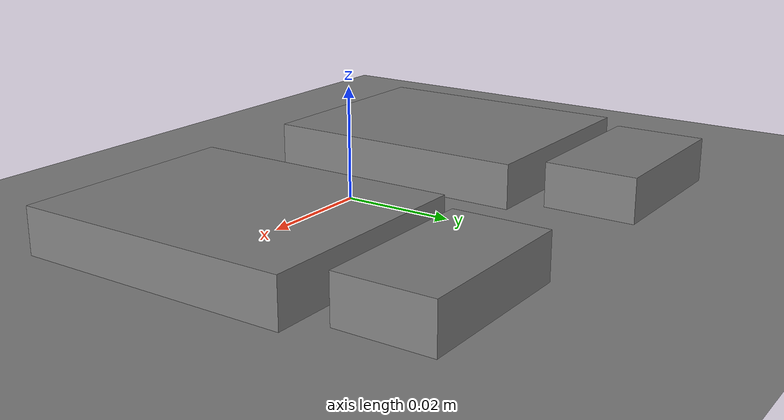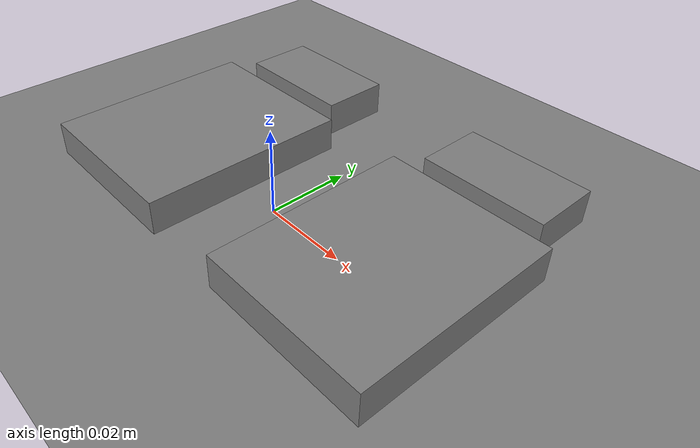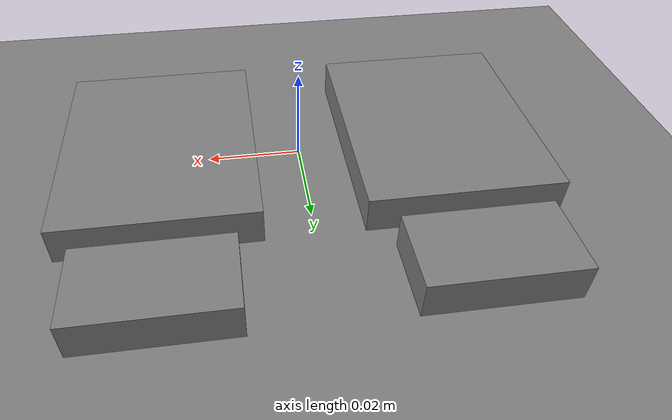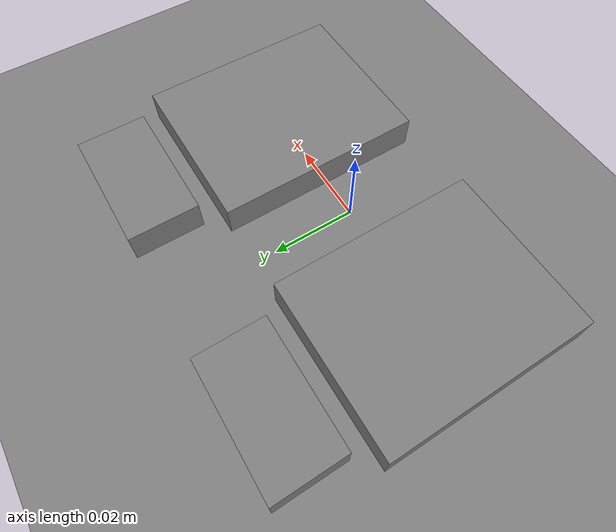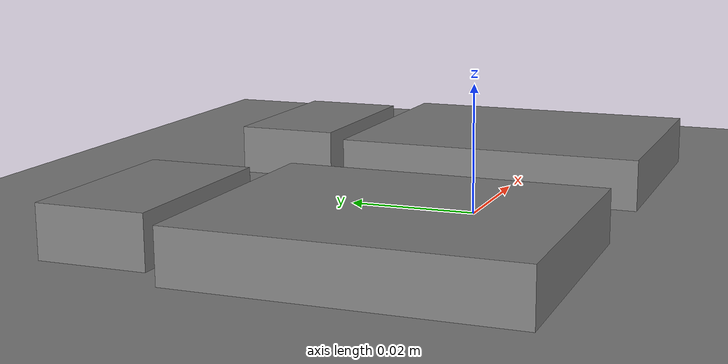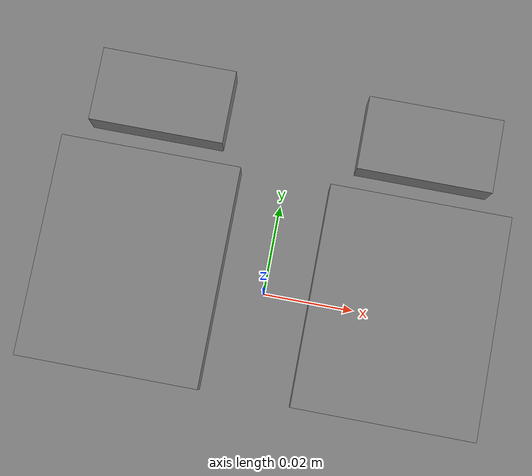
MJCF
<mujoco model="cadex-assembly">
  <compiler angle="radian" autolimits="false"/>

  <option integrator="implicitfast">
    <flag island="disable"/>
  </option>

  <size nkey="1"/>

  <worldbody>
    <body name="ground">
      <inertial pos="0 0 -0.02" quat="0.5 0.5 -0.5 0.5" mass="155.52" diaginertia="37.3248 18.6831 18.6831"/>
      <geom name="ground/collision0" size="0.6 0.6 0.05" type="plane" conaffinity="2147483647"/>
    </body>
    <body name="pelvis" pos="0 0 0.297356">
      <inertial pos="5.10066e-11 -0.0014974 0.00201431" quat="0.585863 0.395936 0.585863 0.395936" mass="0.0344318" diaginertia="2.32693e-05 2.13643e-05 4.10294e-06"/>
      <joint name="pelvis/free" type="free"/>
      <body name="hip_l" pos="-0.03 0 -0.046">
        <inertial pos="0.00306308 0.000167143 0.00483132" quat="0.668848 0.689819 -0.193833 0.198044" mass="0.0109424" diaginertia="2.57133e-06 2.01601e-06 1.52965e-06"/>
        <joint name="hip_roll_l" pos="0 0 0.019" axis="0 1 0" limited="true" range="-0.523599 0.523599" armature="2e-05" damping="0.00572958"/>
        <body name="thigh_l" pos="0 0.012941 -0.0672963">
          <inertial pos="0.00186334 -0.00224105 0.0083637" quat="0.704694 0.0583607 -0.126016 0.695787" mass="0.0113903" diaginertia="1.42442e-05 1.23475e-05 2.80114e-06"/>
          <joint name="hip_pitch_l" pos="0 -0.012941 0.0482963" axis="1 0 0" limited="true" range="-0.785398 0.785398" armature="2e-05" damping="0.00572958"/>
          <body name="calf_l" pos="0 0.000647048 -0.0941778">
            <inertial pos="0.00190529 0.00225987 0.00843394" quat="0.695073 -0.129896 0.0544281 0.705009" mass="0.0106027" diaginertia="1.23437e-05 1.05495e-05 2.56448e-06"/>
            <joint name="knee_l" pos="0 0.0122939 0.0458815" axis="1 0 0" limited="true" range="-0.523599 0.523599" armature="1e-05" damping="0.00572958"/>
            <body name="ankle_bracket_l" pos="0 -0.0122939 -0.0608815">
              <inertial pos="-0.000200146 -0.00305517 0.00502274" quat="0.649131 0.281404 0.651139 0.274697" mass="0.00855603" diaginertia="2.00256e-06 1.64844e-06 9.97989e-07"/>
              <joint name="ankle_l" pos="0 0 0.015" axis="1 0 0" limited="true" range="-0.436332 0.436332" armature="5e-06" damping="0.00286479"/>
              <body name="foot_l" pos="0 0.01225 -0.02">
                <inertial pos="1.85444e-05 -0.0109016 -0.00347887" quat="0.502016 0.498229 -0.496394 0.50333" mass="0.0189899" diaginertia="5.46039e-06 4.23487e-06 1.87339e-06"/>
                <joint name="ankle_roll_l" pos="0 -0.01225 0.005" axis="0 1 0" limited="true" range="-0.349066 0.349066" armature="5e-06" damping="0.00286479"/>
                <geom name="foot_l/collision0" size="0.02 0.0245 0.004" pos="0 -0.01225 -0.005" quat="1 0 0 0" type="box" conaffinity="2147483647" friction="1.2"/>
                <body name="toe_l" pos="0 0.01225 -0.005">
                  <inertial pos="9.15527e-08 0.0100355 -2.16958e-09" quat="1.51361e-05 0.707107 -1.51361e-05 0.707107" mass="0.00631727" diaginertia="7.95477e-07 6.26498e-07 2.3884e-07"/>
                  <geom name="toe_l/collision0" size="0.015 0.00825 0.004" pos="0 0.01275 0" quat="1 0 0 0" type="box" conaffinity="2147483647" friction="1.2"/>
                </body>
              </body>
              <body name="sv_aroll_l" pos="0 -0.00155 -0.0095">
                <inertial pos="0 0.0012249 -0.000366498" quat="0.896988 0.442054 0 0" mass="0.0133982" diaginertia="1.35095e-06 9.00617e-07 7.75131e-07"/>
              </body>
            </body>
            <body name="sv_ankle_l" pos="0.00155 -0.0108704 -0.0405689">
              <inertial pos="-0.0012249 -9.48568e-05 -0.00035401" quat="0.66964 0.227117 0.392694 0.588041" mass="0.0133982" diaginertia="1.35095e-06 9.00617e-07 7.75131e-07"/>
            </body>
          </body>
          <body name="sv_knee_l" pos="0.00155 0.0115174 -0.0429837">
            <inertial pos="-0.0012249 9.48568e-05 -0.00035401" quat="0.588041 0.392694 0.227117 0.66964" mass="0.0133982" diaginertia="1.35095e-06 9.00617e-07 7.75131e-07"/>
          </body>
        </body>
        <body name="sv_pitch_l" pos="0.00155 0 -0.0135">
          <inertial pos="-0.0012249 0 -0.000366498" quat="0.634267 0.312579 0.312579 0.634267" mass="0.0133982" diaginertia="1.35095e-06 9.00617e-07 7.75131e-07"/>
        </body>
      </body>
      <body name="hip_r" pos="0.03 0 -0.046">
        <inertial pos="-0.00306308 0.000167143 0.00483132" quat="0.668848 0.689819 0.193833 -0.198044" mass="0.0109424" diaginertia="2.57133e-06 2.01601e-06 1.52965e-06"/>
        <joint name="hip_roll_r" pos="0 0 0.019" axis="0 1 0" limited="true" range="-0.523599 0.523599" armature="2e-05" damping="0.00572958"/>
        <body name="thigh_r" pos="0 0.012941 -0.0672963">
          <inertial pos="-0.00186334 -0.00224105 0.0083637" quat="0.695787 0.126016 -0.0583607 0.704694" mass="0.0113903" diaginertia="1.42442e-05 1.23475e-05 2.80114e-06"/>
          <joint name="hip_pitch_r" pos="0 -0.012941 0.0482963" axis="1 0 0" limited="true" range="-0.785398 0.785398" armature="2e-05" damping="0.00572958"/>
          <body name="calf_r" pos="0 0.000647048 -0.0941778">
            <inertial pos="-0.00190529 0.00225987 0.00843394" quat="0.705009 -0.0544281 0.129896 0.695073" mass="0.0106027" diaginertia="1.23437e-05 1.05495e-05 2.56448e-06"/>
            <joint name="knee_r" pos="0 0.0122939 0.0458815" axis="1 0 0" limited="true" range="-0.523599 0.523599" armature="1e-05" damping="0.00572958"/>
            <body name="ankle_bracket_r" pos="0 -0.0122939 -0.0608815">
              <inertial pos="0.000200146 -0.00305517 0.00502274" quat="0.651139 0.274697 0.649131 0.281404" mass="0.00855603" diaginertia="2.00256e-06 1.64844e-06 9.97989e-07"/>
              <joint name="ankle_r" pos="0 0 0.015" axis="1 0 0" limited="true" range="-0.436332 0.436332" armature="5e-06" damping="0.00286479"/>
              <body name="foot_r" pos="0 0.01225 -0.02">
                <inertial pos="1.85444e-05 -0.0109016 -0.00347887" quat="0.502016 0.498229 -0.496394 0.50333" mass="0.0189899" diaginertia="5.46039e-06 4.23487e-06 1.87339e-06"/>
                <joint name="ankle_roll_r" pos="0 -0.01225 0.005" axis="0 1 0" limited="true" range="-0.349066 0.349066" armature="5e-06" damping="0.00286479"/>
                <geom name="foot_r/collision0" size="0.02 0.0245 0.004" pos="0 -0.01225 -0.005" quat="1 0 0 0" type="box" conaffinity="2147483647" friction="1.2"/>
                <body name="toe_r" pos="0 0.01225 -0.005">
                  <inertial pos="9.15527e-08 0.0100355 -2.16958e-09" quat="1.51361e-05 0.707107 -1.51361e-05 0.707107" mass="0.00631727" diaginertia="7.95477e-07 6.26498e-07 2.3884e-07"/>
                  <geom name="toe_r/collision0" size="0.015 0.00825 0.004" pos="0 0.01275 0" quat="1 0 0 0" type="box" conaffinity="2147483647" friction="1.2"/>
                </body>
              </body>
              <body name="sv_aroll_r" pos="0 -0.00155 -0.0095">
                <inertial pos="0 0.0012249 -0.000366498" quat="0.896988 0.442054 0 0" mass="0.0133982" diaginertia="1.35095e-06 9.00617e-07 7.75131e-07"/>
              </body>
            </body>
            <body name="sv_ankle_r" pos="-0.00155 -0.0108704 -0.0405689">
              <inertial pos="0.0012249 -9.48568e-05 -0.00035401" quat="0.392694 0.588041 0.66964 0.227117" mass="0.0133982" diaginertia="1.35095e-06 9.00617e-07 7.75131e-07"/>
            </body>
          </body>
          <body name="sv_knee_r" pos="-0.00155 0.0115174 -0.0429837">
            <inertial pos="0.0012249 9.48568e-05 -0.00035401" quat="0.227117 0.66964 0.588041 0.392694" mass="0.0133982" diaginertia="1.35095e-06 9.00617e-07 7.75131e-07"/>
          </body>
        </body>
        <body name="sv_pitch_r" pos="-0.00155 0 -0.0135">
          <inertial pos="0.0012249 0 -0.000366498" quat="0.312579 0.634267 0.634267 0.312579" mass="0.0133982" diaginertia="1.35095e-06 9.00617e-07 7.75131e-07"/>
        </body>
      </body>
      <body name="sv_roll_l" pos="-0.03 -0.00155 -0.0215">
        <inertial pos="0 0.0012249 -0.000366498" quat="0.896988 0.442054 0 0" mass="0.0133982" diaginertia="1.35095e-06 9.00617e-07 7.75131e-07"/>
      </body>
      <body name="sv_roll_r" pos="0.03 -0.00155 -0.0215">
        <inertial pos="0 0.0012249 -0.000366498" quat="0.896988 0.442054 0 0" mass="0.0133982" diaginertia="1.35095e-06 9.00617e-07 7.75131e-07"/>
      </body>
    </body>
  </worldbody>

  <contact>
    <exclude name="hip_l|pelvis" body1="pelvis" body2="hip_l"/>
    <exclude name="hip_r|pelvis" body1="pelvis" body2="hip_r"/>
    <exclude name="pelvis|sv_roll_l" body1="pelvis" body2="sv_roll_l"/>
    <exclude name="pelvis|sv_roll_r" body1="pelvis" body2="sv_roll_r"/>
    <exclude name="hip_l|thigh_l" body1="hip_l" body2="thigh_l"/>
    <exclude name="hip_l|sv_pitch_l" body1="hip_l" body2="sv_pitch_l"/>
    <exclude name="calf_l|thigh_l" body1="thigh_l" body2="calf_l"/>
    <exclude name="sv_knee_l|thigh_l" body1="thigh_l" body2="sv_knee_l"/>
    <exclude name="ankle_bracket_l|calf_l" body1="calf_l" body2="ankle_bracket_l"/>
    <exclude name="calf_l|sv_ankle_l" body1="calf_l" body2="sv_ankle_l"/>
    <exclude name="ankle_bracket_l|foot_l" body1="ankle_bracket_l" body2="foot_l"/>
    <exclude name="ankle_bracket_l|sv_aroll_l" body1="ankle_bracket_l" body2="sv_aroll_l"/>
    <exclude name="foot_l|toe_l" body1="foot_l" body2="toe_l"/>
    <exclude name="hip_r|thigh_r" body1="hip_r" body2="thigh_r"/>
    <exclude name="hip_r|sv_pitch_r" body1="hip_r" body2="sv_pitch_r"/>
    <exclude name="calf_r|thigh_r" body1="thigh_r" body2="calf_r"/>
    <exclude name="sv_knee_r|thigh_r" body1="thigh_r" body2="sv_knee_r"/>
    <exclude name="ankle_bracket_r|calf_r" body1="calf_r" body2="ankle_bracket_r"/>
    <exclude name="calf_r|sv_ankle_r" body1="calf_r" body2="sv_ankle_r"/>
    <exclude name="ankle_bracket_r|foot_r" body1="ankle_bracket_r" body2="foot_r"/>
    <exclude name="ankle_bracket_r|sv_aroll_r" body1="ankle_bracket_r" body2="sv_aroll_r"/>
    <exclude name="foot_r|toe_r" body1="foot_r" body2="toe_r"/>
  </contact>

  <actuator>
    <general name="hip_roll_l/position" joint="hip_roll_l" ctrllimited="false" forcelimited="true" forcerange="-0.086 0.086" biastype="affine" gainprm="0.3" biasprm="0 -0.3 -0.01"/>
    <general name="hip_roll_r/position" joint="hip_roll_r" ctrllimited="false" forcelimited="true" forcerange="-0.086 0.086" biastype="affine" gainprm="0.3" biasprm="0 -0.3 -0.01"/>
    <general name="hip_pitch_l/position" joint="hip_pitch_l" ctrllimited="false" forcelimited="true" forcerange="-0.086 0.086" biastype="affine" gainprm="0.3" biasprm="0 -0.3 -0.01"/>
    <general name="hip_pitch_r/position" joint="hip_pitch_r" ctrllimited="false" forcelimited="true" forcerange="-0.086 0.086" biastype="affine" gainprm="0.3" biasprm="0 -0.3 -0.01"/>
    <general name="knee_l/position" joint="knee_l" ctrllimited="false" forcelimited="true" forcerange="-0.086 0.086" biastype="affine" gainprm="0.3" biasprm="0 -0.3 -0.01"/>
    <general name="knee_r/position" joint="knee_r" ctrllimited="false" forcelimited="true" forcerange="-0.086 0.086" biastype="affine" gainprm="0.3" biasprm="0 -0.3 -0.01"/>
    <general name="ankle_l/position" joint="ankle_l" ctrllimited="false" forcelimited="true" forcerange="-0.086 0.086" biastype="affine" gainprm="0.3" biasprm="0 -0.3 -0.01"/>
    <general name="ankle_r/position" joint="ankle_r" ctrllimited="false" forcelimited="true" forcerange="-0.086 0.086" biastype="affine" gainprm="0.3" biasprm="0 -0.3 -0.01"/>
    <general name="ankle_roll_l/position" joint="ankle_roll_l" ctrllimited="false" forcelimited="true" forcerange="-0.086 0.086" biastype="affine" gainprm="0.3" biasprm="0 -0.3 -0.01"/>
    <general name="ankle_roll_r/position" joint="ankle_roll_r" ctrllimited="false" forcelimited="true" forcerange="-0.086 0.086" biastype="affine" gainprm="0.3" biasprm="0 -0.3 -0.01"/>
  </actuator>

  <sensor>
    <framepos objtype="xbody" objname="pelvis" name="obs/0"/>
    <framequat objtype="xbody" objname="pelvis" name="obs/1"/>
    <framelinvel objtype="xbody" objname="pelvis" name="obs/2"/>
    <frameangvel objtype="xbody" objname="pelvis" name="obs/3"/>
    <subtreecom body="pelvis" name="obs/4"/>
    <subtreelinvel body="pelvis" name="obs/5"/>
    <subtreeangmom body="pelvis" name="obs/6"/>
    <framepos objtype="xbody" objname="foot_l" name="obs/7"/>
    <framepos objtype="xbody" objname="foot_r" name="obs/8"/>
    <jointpos joint="hip_roll_l" name="obs/9"/>
    <jointpos joint="hip_roll_r" name="obs/10"/>
    <jointpos joint="hip_pitch_l" name="obs/11"/>
    <jointpos joint="hip_pitch_r" name="obs/12"/>
    <jointpos joint="knee_l" name="obs/13"/>
    <jointpos joint="knee_r" name="obs/14"/>
    <jointpos joint="ankle_l" name="obs/15"/>
    <jointpos joint="ankle_r" name="obs/16"/>
    <jointpos joint="ankle_roll_l" name="obs/17"/>
    <jointpos joint="ankle_roll_r" name="obs/18"/>
    <jointvel joint="hip_roll_l" name="obs/19"/>
    <jointvel joint="hip_roll_r" name="obs/20"/>
    <jointvel joint="hip_pitch_l" name="obs/21"/>
    <jointvel joint="hip_pitch_r" name="obs/22"/>
    <jointvel joint="knee_l" name="obs/23"/>
    <jointvel joint="knee_r" name="obs/24"/>
    <jointvel joint="ankle_l" name="obs/25"/>
    <jointvel joint="ankle_r" name="obs/26"/>
    <jointvel joint="ankle_roll_l" name="obs/27"/>
    <jointvel joint="ankle_roll_r" name="obs/28"/>

    <actuatorfrc actuator="hip_roll_l/position" name="obs/29"/>

    <actuatorfrc actuator="hip_roll_r/position" name="obs/30"/>

    <actuatorfrc actuator="hip_pitch_l/position" name="obs/31"/>

    <actuatorfrc actuator="hip_pitch_r/position" name="obs/32"/>

    <actuatorfrc actuator="knee_l/position" name="obs/33"/>

    <actuatorfrc actuator="knee_r/position" name="obs/34"/>

    <actuatorfrc actuator="ankle_l/position" name="obs/35"/>

    <actuatorfrc actuator="ankle_r/position" name="obs/36"/>

    <actuatorfrc actuator="ankle_roll_l/position" name="obs/37"/>

    <actuatorfrc actuator="ankle_roll_r/position" name="obs/38"/>
  </sensor>

  <keyframe>
    <key name="solved" qpos="0 0 0.297356 1 0 0 0 0 0 0 0 0 0 0 0 0 0"/>
  </keyframe>
</mujoco>
